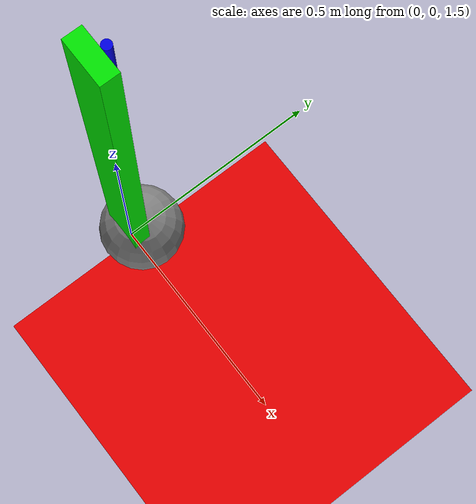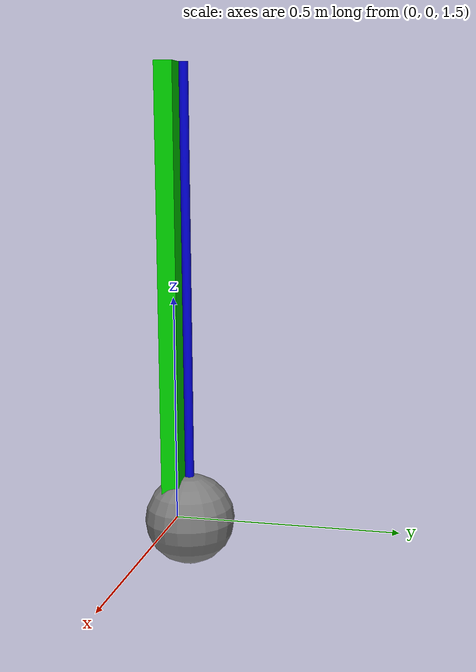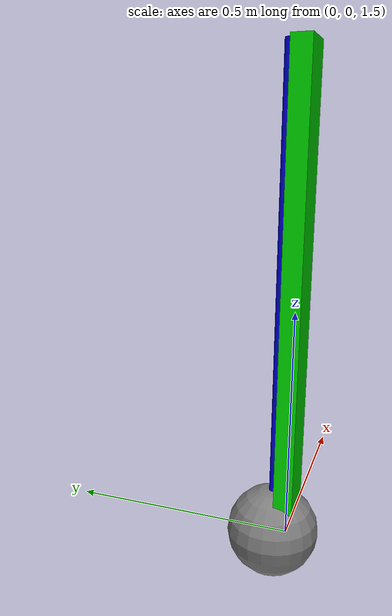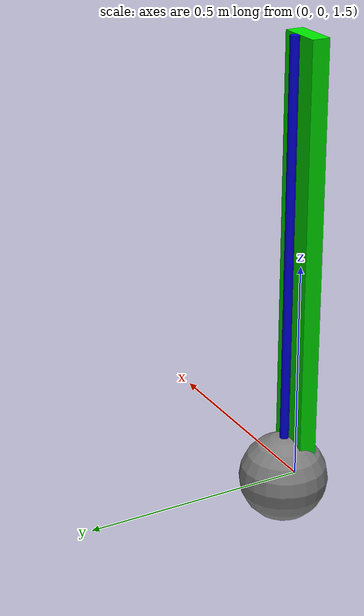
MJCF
<mujoco>
    <compiler angle="radian"></compiler>
	<option timestep="0.0001" integrator="RK4" gravity="0 0 0" >
		<flag sensornoise="enable" energy="enable" contact="disable" />
	</option>
	<worldbody>
        <light diffuse=".5 .5 .5" pos="0 0 3" dir="0 0 -1"/>
		<geom type="plane" size="1 1 0.1" rgba=".9 0 0 1"/>
		<body pos="0 0 2" euler="0 3.14 0">
			<joint name="pin" type="hinge" axis = "0 -1 0" pos="0 0 -0.5" limited="true" range="-1.5707 1.5707"/>
            <joint name="pin2" type="hinge" axis = "1 0 0" pos="0 0 -0.5" limited="true" range="-0.7854 0.7854"/>
            <geom type="box" size="0.05 0.02 0.5" rgba="0 .9 0 1" mass="1"/>
			<body pos="0 0.03 0" euler="0 0 0">
				<joint name="pin3" type="slide" axis = "0 0 1" pos="0 0 0.5" limited="true" range="0 0.5"/>
				<geom type="cylinder" size="0.01 0.5" rgba="0 0 .9 1" mass="1"/>
				<site name="endeff" pos="0 0 0.5" size="0.1"/>
			</body>
		</body>
	</worldbody>
	<actuator>
		<position name="pservo1" joint="pin" kp="100" />
		<velocity name="vservo1" joint="pin" kv="10" />
		<position name="pservo2" joint="pin2" kp="100" />
		<velocity name="vservo2" joint="pin2" kv="10" />
	</actuator>
	<sensor>
		<framepos objtype="site" objname="endeff"/>
		<framelinvel objtype="site" objname="endeff"/>
	</sensor>
</mujoco>
